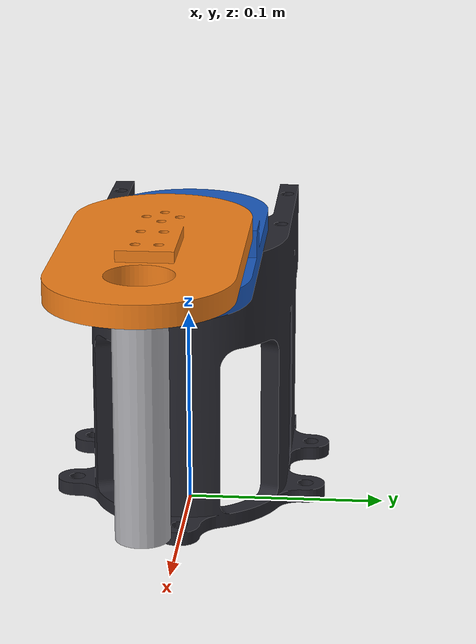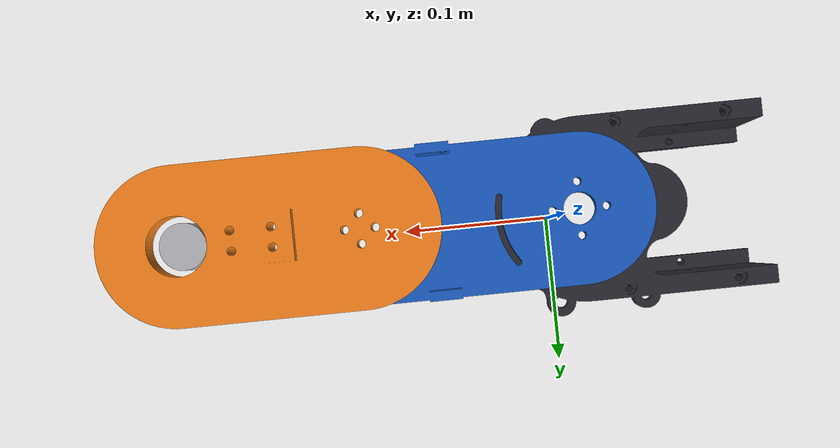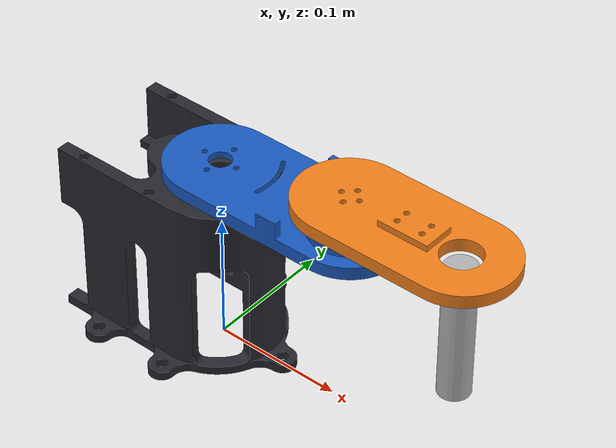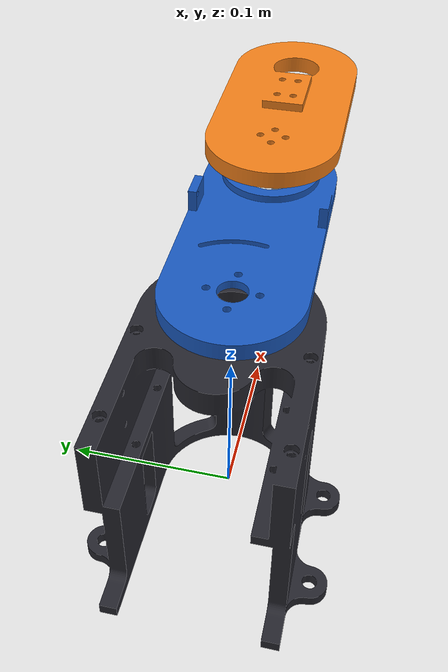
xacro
<?xml version="1.0"?>
<robot xmlns:xacro="http://www.ros.org/wiki/xacro" name="scara_rrp">

  <!-- ===================== parameters (meters / radians) ===================== -->
  <xacro:property name="PI" value="3.14159265359"/>
  <xacro:property name="mm" value="0.001"/>

  <xacro:property name="L1"          value="0.11211"/>  <!-- [FW] L1_M -->
  <xacro:property name="L2"          value="0.09000"/>  <!-- [FW] L2_M -->
  <xacro:property name="link1_z"     value="0.1446"/>   <!-- bottom of link 1 above the table -->
  <xacro:property name="link2_z"     value="0.1716"/>   <!-- bottom of link 2 above the table -->

  <!-- Tool tip height above the table. TODO(measure): placeholders, keep equal to the firmware -->
  <xacro:property name="tool_z_up"   value="0.065"/>    <!-- [FW] TOOL_Z_UP_M -->
  <xacro:property name="tool_z_down" value="0.025"/>    <!-- [FW] TOOL_Z_DOWN_M -->
  <xacro:property name="p_stroke"    value="${tool_z_up - tool_z_down}"/>
  <xacro:property name="quill_len"   value="${link2_z - tool_z_up}"/>  <!-- link 2 bottom -> tool tip, P up -->
  <xacro:property name="quill_r"     value="0.012"/>    <!-- placeholder until meshes/link3.stl exists -->

  <!-- joint 1 axis position in base.stl coordinates (center of the 42 mm bore) -->
  <xacro:property name="base_axis_x" value="-0.030"/>
  <!-- base.stl yaw about the joint 1 axis: PI = the motor rails point to -X, so at q1 = 0
       the arm points away from them. Use 0 or +-PI/2 if the robot's 0 deg is elsewhere. -->
  <xacro:property name="base_yaw"    value="${PI}"/>

  <!-- joint limits = firmware soft limits J1/J2_MIN/MAX_RAD -->
  <xacro:property name="j1_min"      value="${-81*PI/180}"/>
  <xacro:property name="j1_max"      value="${80*PI/180}"/>
  <xacro:property name="j2_min"      value="${-64*PI/180}"/>
  <xacro:property name="j2_max"      value="${67.5*PI/180}"/>

  <!-- ===================== materials ===================== -->
  <material name="dark"><color rgba="0.15 0.15 0.18 1"/></material>
  <material name="blue"><color rgba="0.10 0.35 0.75 1"/></material>
  <material name="orange"><color rgba="0.95 0.50 0.10 1"/></material>
  <material name="grey"><color rgba="0.70 0.70 0.72 1"/></material>

  <!-- box inertia helper -->
  <xacro:macro name="box_inertia" params="m x y z">
    <inertia ixx="${m*(y*y+z*z)/12}" ixy="0" ixz="0" iyy="${m*(x*x+z*z)/12}" iyz="0" izz="${m*(x*x+y*y)/12}"/>
  </xacro:macro>

  <!-- ===================== base ===================== -->
  <link name="world"/>

  <joint name="world_to_base" type="fixed">
    <parent link="world"/>
    <child link="base_link"/>
    <origin xyz="0 0 0" rpy="0 0 0"/>
  </joint>

  <!-- base.stl: origin on the table, joint 1 axis at x = -30 mm, 170 x 140 x 141 mm -->
  <link name="base_link">
    <visual>
      <origin xyz="${-base_axis_x*cos(base_yaw)} ${-base_axis_x*sin(base_yaw)} 0" rpy="0 0 ${base_yaw}"/>
      <geometry><mesh filename="package://scara_description/meshes/base.stl" scale="${mm} ${mm} ${mm}"/></geometry>
      <material name="dark"/>
    </visual>
    <collision>
      <origin xyz="${-(base_axis_x + 0.010)*cos(base_yaw)} ${-(base_axis_x + 0.010)*sin(base_yaw)} 0.0705" rpy="0 0 ${base_yaw}"/>
      <geometry><box size="0.170 0.140 0.141"/></geometry>
    </collision>
    <inertial>
      <origin xyz="0 0 0.05"/>
      <mass value="2.0"/>
      <xacro:box_inertia m="2.0" x="0.170" y="0.140" z="0.141"/>
    </inertial>
  </link>

  <!-- ===================== arm 1 (R) ===================== -->
  <joint name="joint1" type="revolute">
    <parent link="base_link"/>
    <child link="link1"/>
    <origin xyz="0 0 ${link1_z}" rpy="0 0 0"/>
    <axis xyz="0 0 1"/>
    <limit lower="${j1_min}" upper="${j1_max}" effort="5" velocity="2.0"/>
  </joint>

  <!-- link1.stl: origin at the joint 1 hub, bottom face z = 0, arm drawn along -X -> yaw PI -->
  <link name="link1">
    <visual>
      <origin xyz="0 0 0" rpy="0 0 ${PI}"/>
      <geometry><mesh filename="package://scara_description/meshes/link1.stl" scale="${mm} ${mm} ${mm}"/></geometry>
      <material name="blue"/>
    </visual>
    <collision>
      <origin xyz="0.056 0 0.0115"/>
      <geometry><box size="0.192 0.080 0.023"/></geometry>
    </collision>
    <inertial>
      <origin xyz="${L1/2} 0 0.0115"/>
      <mass value="0.4"/>
      <xacro:box_inertia m="0.4" x="0.192" y="0.080" z="0.023"/>
    </inertial>
  </link>

  <!-- ===================== arm 2 (R) ===================== -->
  <joint name="joint2" type="revolute">
    <parent link="link1"/>
    <child link="link2"/>
    <origin xyz="${L1} 0 ${link2_z - link1_z}" rpy="0 0 0"/>
    <axis xyz="0 0 1"/>
    <limit lower="${j2_min}" upper="${j2_max}" effort="3" velocity="2.5"/>
  </joint>

  <!-- link2.stl: origin at the joint 2 hub, bottom face z = 0, arm drawn along -X -> yaw PI -->
  <link name="link2">
    <visual>
      <origin xyz="0 0 0" rpy="0 0 ${PI}"/>
      <geometry><mesh filename="package://scara_description/meshes/link2.stl" scale="${mm} ${mm} ${mm}"/></geometry>
      <material name="orange"/>
    </visual>
    <collision>
      <origin xyz="0.045 0 0.0075"/>
      <geometry><box size="0.170 0.080 0.015"/></geometry>
    </collision>
    <inertial>
      <origin xyz="${L2/2} 0 0.0075"/>
      <mass value="0.3"/>
      <xacro:box_inertia m="0.3" x="0.170" y="0.080" z="0.015"/>
    </inertial>
  </link>

  <!-- ===================== P (solenoid, binary) ===================== -->
  <!-- q3 = 0 -> P UP (solenoid energized), q3 = p_stroke -> P DOWN -->
  <joint name="joint3" type="prismatic">
    <parent link="link2"/>
    <child link="link3"/>
    <origin xyz="${L2} 0 0" rpy="0 0 0"/>
    <axis xyz="0 0 -1"/>
    <limit lower="0" upper="${p_stroke}" effort="10" velocity="0.5"/>
  </joint>

  <!-- TODO: replace the cylinder with meshes/link3.stl once it exists -->
  <link name="link3">
    <visual>
      <origin xyz="0 0 ${-quill_len/2}"/>
      <geometry><cylinder radius="${quill_r}" length="${quill_len}"/></geometry>
      <material name="grey"/>
    </visual>
    <collision>
      <origin xyz="0 0 ${-quill_len/2}"/>
      <geometry><cylinder radius="${quill_r}" length="${quill_len}"/></geometry>
    </collision>
    <inertial>
      <origin xyz="0 0 ${-quill_len/2}"/>
      <mass value="0.1"/>
      <xacro:box_inertia m="0.1" x="${2*quill_r}" y="${2*quill_r}" z="${quill_len}"/>
    </inertial>
  </link>

  <!-- tool tip (suction cup / dispenser nozzle) -->
  <joint name="tool_joint" type="fixed">
    <parent link="link3"/>
    <child link="tool0"/>
    <origin xyz="0 0 ${-quill_len}" rpy="0 0 0"/>
  </joint>
  <link name="tool0"/>

</robot>
